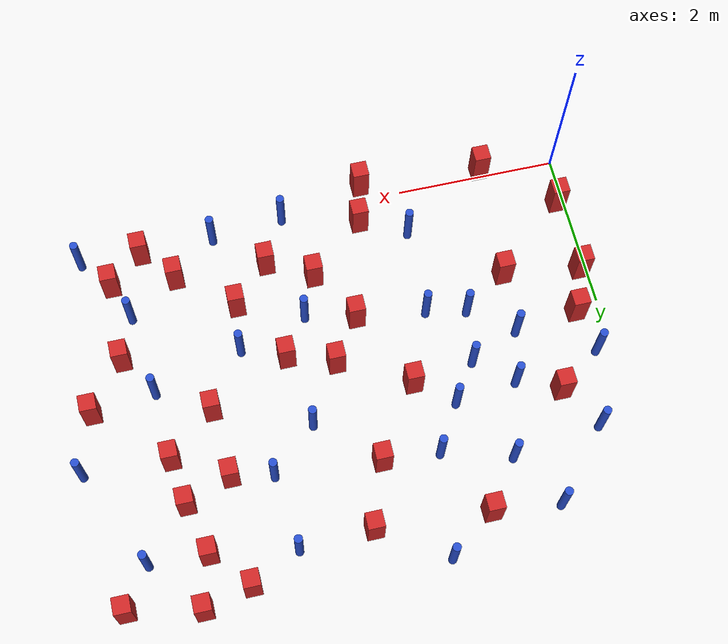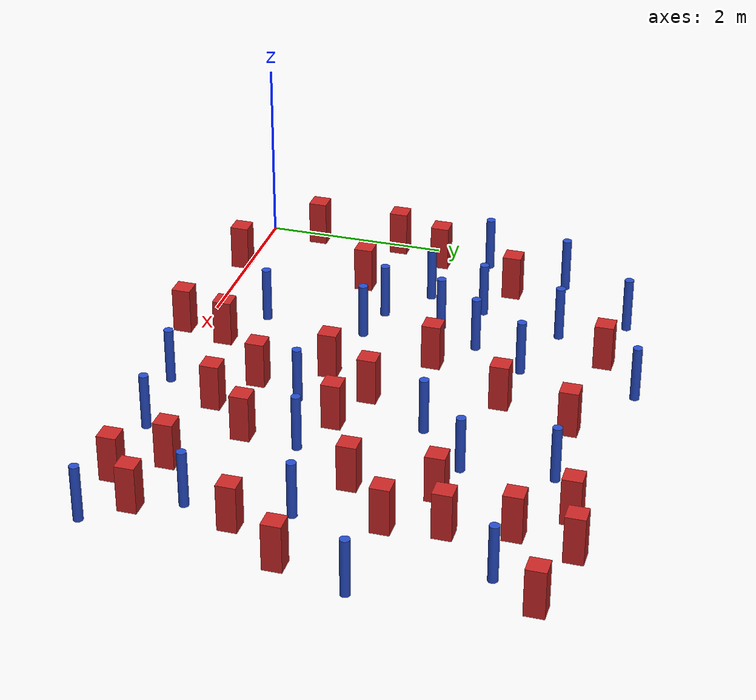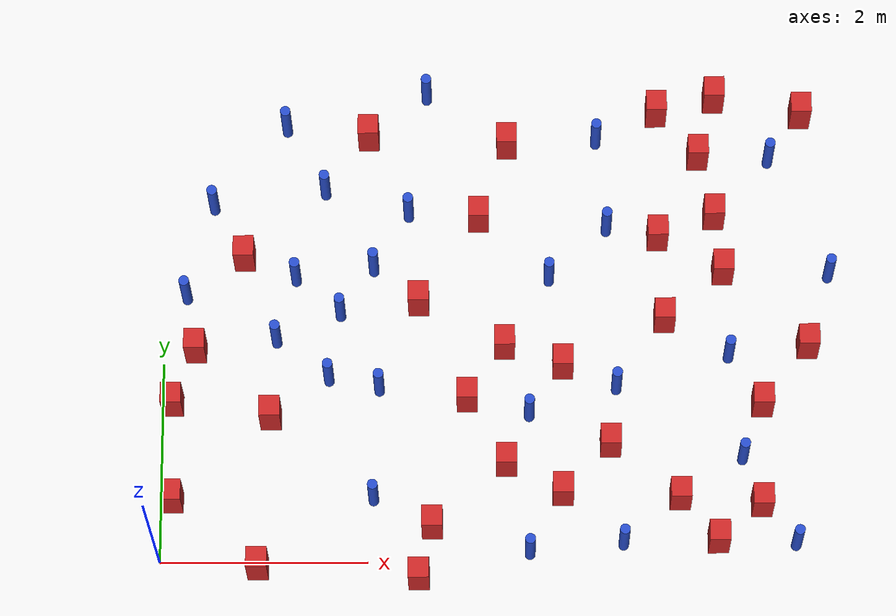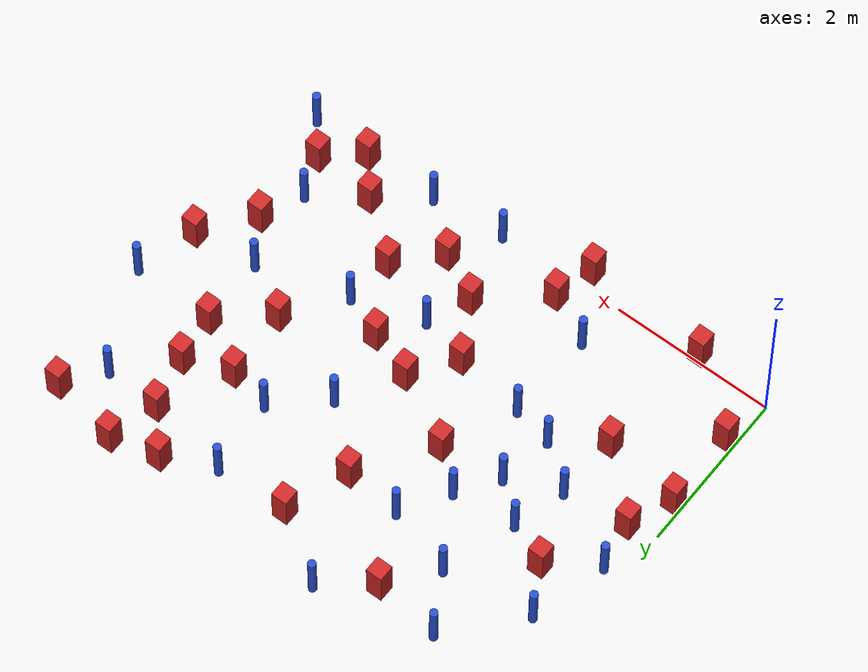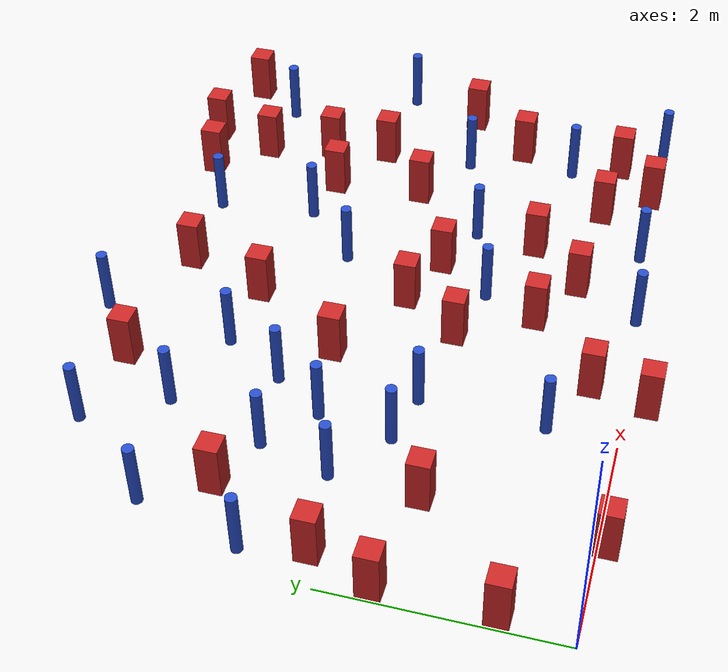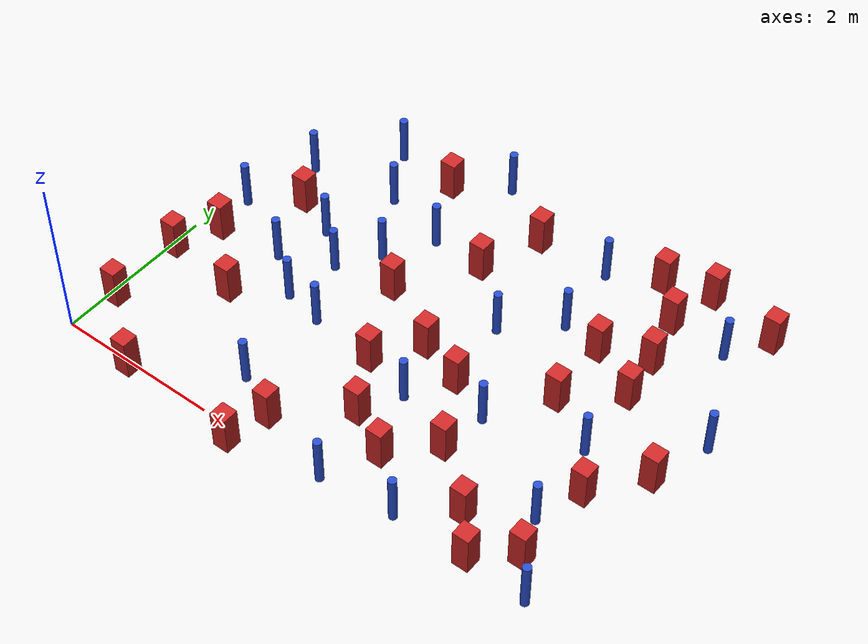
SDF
<sdf version="1.6">
 <model name="dense_22">
  <model name="square_post_obstacle4">
   <static>true</static>
   <pose>6.26932080476 2.13416776253 -6.11067671241e-07 -5.50515727128e-06 -8.79689657224e-07 2.37013304536e-05</pose>
   <link name="link">
    <pose>0 0 0.25 0 -0 0</pose>
    <inertial>
     <mass>100</mass>
     <inertia>
      <ixx>0.166667</ixx>
      <ixy>0</ixy>
      <ixz>0</ixz>
      <iyy>0.166667</iyy>
      <iyz>0</iyz>
      <izz>0.166667</izz>
     </inertia>
    </inertial>
    <collision name="collision"><geometry><box><size>.2 .2 .5</size></box></geometry></collision>
    <visual name="visual">
     <geometry><box><size>.2 .2 .5</size></box></geometry>
     <material>
      <script><name>Gazebo/Red</name><uri>file://media/materials/scripts/gazebo.material</uri></script>
     </material>
    </visual>
   </link>
  </model>
  <model name="square_post_obstacle7">
   <static>true</static>
   <pose>2.61931399791 0.32892126336 -6.11067671241e-07 -5.50515727128e-06 -8.79689657224e-07 2.37013304536e-05</pose>
   <link name="link">
    <pose>0 0 0.25 0 -0 0</pose>
    <inertial>
     <mass>100</mass>
     <inertia>
      <ixx>0.166667</ixx>
      <ixy>0</ixy>
      <ixz>0</ixz>
      <iyy>0.166667</iyy>
      <iyz>0</iyz>
      <izz>0.166667</izz>
     </inertia>
    </inertial>
    <collision name="collision"><geometry><box><size>.2 .2 .5</size></box></geometry></collision>
    <visual name="visual">
     <geometry><box><size>.2 .2 .5</size></box></geometry>
     <material>
      <script><name>Gazebo/Red</name><uri>file://media/materials/scripts/gazebo.material</uri></script>
     </material>
    </visual>
   </link>
  </model>
  <model name="square_post_obstacle8">
   <static>true</static>
   <pose>0.779400273148 3.0589968224 -6.11067671241e-07 -5.50515727128e-06 -8.79689657224e-07 2.37013304536e-05</pose>
   <link name="link">
    <pose>0 0 0.25 0 -0 0</pose>
    <inertial>
     <mass>100</mass>
     <inertia>
      <ixx>0.166667</ixx>
      <ixy>0</ixy>
      <ixz>0</ixz>
      <iyy>0.166667</iyy>
      <iyz>0</iyz>
      <izz>0.166667</izz>
     </inertia>
    </inertial>
    <collision name="collision"><geometry><box><size>.2 .2 .5</size></box></geometry></collision>
    <visual name="visual">
     <geometry><box><size>.2 .2 .5</size></box></geometry>
     <material>
      <script><name>Gazebo/Red</name><uri>file://media/materials/scripts/gazebo.material</uri></script>
     </material>
    </visual>
   </link>
  </model>
  <model name="square_post_obstacle9">
   <static>true</static>
   <pose>0.101790933784 1.56928342861 -6.11067671241e-07 -5.50515727128e-06 -8.79689657224e-07 2.37013304536e-05</pose>
   <link name="link">
    <pose>0 0 0.25 0 -0 0</pose>
    <inertial>
     <mass>100</mass>
     <inertia>
      <ixx>0.166667</ixx>
      <ixy>0</ixy>
      <ixz>0</ixz>
      <iyy>0.166667</iyy>
      <iyz>0</iyz>
      <izz>0.166667</izz>
     </inertia>
    </inertial>
    <collision name="collision"><geometry><box><size>.2 .2 .5</size></box></geometry></collision>
    <visual name="visual">
     <geometry><box><size>.2 .2 .5</size></box></geometry>
     <material>
      <script><name>Gazebo/Red</name><uri>file://media/materials/scripts/gazebo.material</uri></script>
     </material>
    </visual>
   </link>
  </model>
  <model name="square_post_obstacle12">
   <static>true</static>
   <pose>5.79151659013 0.536573536814 -6.11067671241e-07 -5.50515727128e-06 -8.79689657224e-07 2.37013304536e-05</pose>
   <link name="link">
    <pose>0 0 0.25 0 -0 0</pose>
    <inertial>
     <mass>100</mass>
     <inertia>
      <ixx>0.166667</ixx>
      <ixy>0</ixy>
      <ixz>0</ixz>
      <iyy>0.166667</iyy>
      <iyz>0</iyz>
      <izz>0.166667</izz>
     </inertia>
    </inertial>
    <collision name="collision"><geometry><box><size>.2 .2 .5</size></box></geometry></collision>
    <visual name="visual">
     <geometry><box><size>.2 .2 .5</size></box></geometry>
     <material>
      <script><name>Gazebo/Red</name><uri>file://media/materials/scripts/gazebo.material</uri></script>
     </material>
    </visual>
   </link>
  </model>
  <model name="square_post_obstacle15">
   <static>true</static>
   <pose>2.95515435854 1.60631993634 -6.11067671241e-07 -5.50515727128e-06 -8.79689657224e-07 2.37013304536e-05</pose>
   <link name="link">
    <pose>0 0 0.25 0 -0 0</pose>
    <inertial>
     <mass>100</mass>
     <inertia>
      <ixx>0.166667</ixx>
      <ixy>0</ixy>
      <ixz>0</ixz>
      <iyy>0.166667</iyy>
      <iyz>0</iyz>
      <izz>0.166667</izz>
     </inertia>
    </inertial>
    <collision name="collision"><geometry><box><size>.2 .2 .5</size></box></geometry></collision>
    <visual name="visual">
     <geometry><box><size>.2 .2 .5</size></box></geometry>
     <material>
      <script><name>Gazebo/Red</name><uri>file://media/materials/scripts/gazebo.material</uri></script>
     </material>
    </visual>
   </link>
  </model>
  <model name="square_post_obstacle16">
   <static>true</static>
   <pose>1.98771499368 4.31782590708 -6.11067671241e-07 -5.50515727128e-06 -8.79689657224e-07 2.37013304536e-05</pose>
   <link name="link">
    <pose>0 0 0.25 0 -0 0</pose>
    <inertial>
     <mass>100</mass>
     <inertia>
      <ixx>0.166667</ixx>
      <ixy>0</ixy>
      <ixz>0</ixz>
      <iyy>0.166667</iyy>
      <iyz>0</iyz>
      <izz>0.166667</izz>
     </inertia>
    </inertial>
    <collision name="collision"><geometry><box><size>.2 .2 .5</size></box></geometry></collision>
    <visual name="visual">
     <geometry><box><size>.2 .2 .5</size></box></geometry>
     <material>
      <script><name>Gazebo/Red</name><uri>file://media/materials/scripts/gazebo.material</uri></script>
     </material>
    </visual>
   </link>
  </model>
  <model name="pole_obstacle25">
   <static>true</static>
   <pose>0.217772966762 2.66445412357 -9.4761961606e-06 5.49618799729e-07 2.36310413995e-07 -1.55090534826e-07</pose>
   <link name="link">
    <pose>0 0 0.3 0 -0 0</pose>
    <inertial>
     <mass>1</mass>
     <inertia><ixx>0.145833</ixx><ixy>0</ixy><ixz>0</ixz><iyy>0.145833</iyy><iyz>0</iyz><izz>0.125</izz></inertia>
    </inertial>
    <collision name="collision">
     <geometry><cylinder><radius>0.05</radius><length>.6</length></cylinder></geometry>
    </collision>
    <visual name="visual">
     <geometry><cylinder><radius>0.05</radius><length>.6</length></cylinder></geometry>
     <material>
      <script><name>Gazebo/Blue</name><uri>file://media/materials/scripts/gazebo.material</uri></script>
     </material>
    </visual>
   </link>
  </model>
  <model name="square_post_obstacle34">
   <static>true</static>
   <pose>4.82586942838 4.55679232127 -6.11067671241e-07 -5.50515727128e-06 -8.79689657224e-07 2.37013304536e-05</pose>
   <link name="link">
    <pose>0 0 0.25 0 -0 0</pose>
    <inertial>
     <mass>100</mass>
     <inertia>
      <ixx>0.166667</ixx>
      <ixy>0</ixy>
      <ixz>0</ixz>
      <iyy>0.166667</iyy>
      <iyz>0</iyz>
      <izz>0.166667</izz>
     </inertia>
    </inertial>
    <collision name="collision"><geometry><box><size>.2 .2 .5</size></box></geometry></collision>
    <visual name="visual">
     <geometry><box><size>.2 .2 .5</size></box></geometry>
     <material>
      <script><name>Gazebo/Red</name><uri>file://media/materials/scripts/gazebo.material</uri></script>
     </material>
    </visual>
   </link>
  </model>
  <model name="pole_obstacle39">
   <static>true</static>
   <pose>1.72063128281 2.4826615082 -9.47619616065e-06 5.49618799737e-07 2.36310414062e-07 -1.55090534798e-07</pose>
   <link name="link">
    <pose>0 0 0.3 0 -0 0</pose>
    <inertial>
     <mass>1</mass>
     <inertia><ixx>0.145833</ixx><ixy>0</ixy><ixz>0</ixz><iyy>0.145833</iyy><iyz>0</iyz><izz>0.125</izz></inertia>
    </inertial>
    <collision name="collision">
     <geometry><cylinder><radius>0.05</radius><length>.6</length></cylinder></geometry>
    </collision>
    <visual name="visual">
     <geometry><cylinder><radius>0.05</radius><length>.6</length></cylinder></geometry>
     <material>
      <script><name>Gazebo/Blue</name><uri>file://media/materials/scripts/gazebo.material</uri></script>
     </material>
    </visual>
   </link>
  </model>
  <model name="square_post_obstacle44">
   <static>true</static>
   <pose>3.06991139394 3.45622264912 -6.11067671241e-07 -5.50515727128e-06 -8.79689657224e-07 2.37013304536e-05</pose>
   <link name="link">
    <pose>0 0 0.25 0 -0 0</pose>
    <inertial>
     <mass>100</mass>
     <inertia>
      <ixx>0.166667</ixx>
      <ixy>0</ixy>
      <ixz>0</ixz>
      <iyy>0.166667</iyy>
      <iyz>0</iyz>
      <izz>0.166667</izz>
     </inertia>
    </inertial>
    <collision name="collision"><geometry><box><size>.2 .2 .5</size></box></geometry></collision>
    <visual name="visual">
     <geometry><box><size>.2 .2 .5</size></box></geometry>
     <material>
      <script><name>Gazebo/Red</name><uri>file://media/materials/scripts/gazebo.material</uri></script>
     </material>
    </visual>
   </link>
  </model>
  <model name="square_post_obstacle45">
   <static>true</static>
   <pose>3.8844771772 1.93693836416 -6.11067671241e-07 -5.50515727128e-06 -8.79689657224e-07 2.37013304536e-05</pose>
   <link name="link">
    <pose>0 0 0.25 0 -0 0</pose>
    <inertial>
     <mass>100</mass>
     <inertia>
      <ixx>0.166667</ixx>
      <ixy>0</ixy>
      <ixz>0</ixz>
      <iyy>0.166667</iyy>
      <iyz>0</iyz>
      <izz>0.166667</izz>
     </inertia>
    </inertial>
    <collision name="collision"><geometry><box><size>.2 .2 .5</size></box></geometry></collision>
    <visual name="visual">
     <geometry><box><size>.2 .2 .5</size></box></geometry>
     <material>
      <script><name>Gazebo/Red</name><uri>file://media/materials/scripts/gazebo.material</uri></script>
     </material>
    </visual>
   </link>
  </model>
  <model name="pole_obstacle47">
   <static>true</static>
   <pose>5.92821344681 4.06574805997 -9.47619616065e-06 5.49618799737e-07 2.36310414037e-07 -1.55090534814e-07</pose>
   <link name="link">
    <pose>0 0 0.3 0 -0 0</pose>
    <inertial>
     <mass>1</mass>
     <inertia><ixx>0.145833</ixx><ixy>0</ixy><ixz>0</ixz><iyy>0.145833</iyy><iyz>0</iyz><izz>0.125</izz></inertia>
    </inertial>
    <collision name="collision">
     <geometry><cylinder><radius>0.05</radius><length>.6</length></cylinder></geometry>
    </collision>
    <visual name="visual">
     <geometry><cylinder><radius>0.05</radius><length>.6</length></cylinder></geometry>
     <material>
      <script><name>Gazebo/Blue</name><uri>file://media/materials/scripts/gazebo.material</uri></script>
     </material>
    </visual>
   </link>
  </model>
  <model name="pole_obstacle54">
   <static>true</static>
   <pose>1.56436303592 3.74919223554 -9.47619616065e-06 5.49618799737e-07 2.36310414062e-07 -1.55090534798e-07</pose>
   <link name="link">
    <pose>0 0 0.3 0 -0 0</pose>
    <inertial>
     <mass>1</mass>
     <inertia><ixx>0.145833</ixx><ixy>0</ixy><ixz>0</ixz><iyy>0.145833</iyy><iyz>0</iyz><izz>0.125</izz></inertia>
    </inertial>
    <collision name="collision">
     <geometry><cylinder><radius>0.05</radius><length>.6</length></cylinder></geometry>
    </collision>
    <visual name="visual">
     <geometry><cylinder><radius>0.05</radius><length>.6</length></cylinder></geometry>
     <material>
      <script><name>Gazebo/Blue</name><uri>file://media/materials/scripts/gazebo.material</uri></script>
     </material>
    </visual>
   </link>
  </model>
  <model name="pole_obstacle59">
   <static>true</static>
   <pose>1.17912527791 4.41500066654 -9.47619616065e-06 5.49618799737e-07 2.36310414061e-07 -1.550905348e-07</pose>
   <link name="link">
    <pose>0 0 0.3 0 -0 0</pose>
    <inertial>
     <mass>1</mass>
     <inertia><ixx>0.145833</ixx><ixy>0</ixy><ixz>0</ixz><iyy>0.145833</iyy><iyz>0</iyz><izz>0.125</izz></inertia>
    </inertial>
    <collision name="collision">
     <geometry><cylinder><radius>0.05</radius><length>.6</length></cylinder></geometry>
    </collision>
    <visual name="visual">
     <geometry><cylinder><radius>0.05</radius><length>.6</length></cylinder></geometry>
     <material>
      <script><name>Gazebo/Blue</name><uri>file://media/materials/scripts/gazebo.material</uri></script>
     </material>
    </visual>
   </link>
  </model>
  <model name="pole_obstacle73">
   <static>true</static>
   <pose>3.55693027283 0.0680180246044 -9.4761961606e-06 5.49618799729e-07 2.36310414001e-07 -1.55090534824e-07</pose>
   <link name="link">
    <pose>0 0 0.3 0 -0 0</pose>
    <inertial>
     <mass>1</mass>
     <inertia><ixx>0.145833</ixx><ixy>0</ixy><ixz>0</ixz><iyy>0.145833</iyy><iyz>0</iyz><izz>0.125</izz></inertia>
    </inertial>
    <collision name="collision">
     <geometry><cylinder><radius>0.05</radius><length>.6</length></cylinder></geometry>
    </collision>
    <visual name="visual">
     <geometry><cylinder><radius>0.05</radius><length>.6</length></cylinder></geometry>
     <material>
      <script><name>Gazebo/Blue</name><uri>file://media/materials/scripts/gazebo.material</uri></script>
     </material>
    </visual>
   </link>
  </model>
  <model name="pole_obstacle74">
   <static>true</static>
   <pose>4.32387903605 3.35529345492 -9.47619616065e-06 5.49618799738e-07 2.36310414051e-07 -1.55090534805e-07</pose>
   <link name="link">
    <pose>0 0 0.3 0 -0 0</pose>
    <inertial>
     <mass>1</mass>
     <inertia><ixx>0.145833</ixx><ixy>0</ixy><ixz>0</ixz><iyy>0.145833</iyy><iyz>0</iyz><izz>0.125</izz></inertia>
    </inertial>
    <collision name="collision">
     <geometry><cylinder><radius>0.05</radius><length>.6</length></cylinder></geometry>
    </collision>
    <visual name="visual">
     <geometry><cylinder><radius>0.05</radius><length>.6</length></cylinder></geometry>
     <material>
      <script><name>Gazebo/Blue</name><uri>file://media/materials/scripts/gazebo.material</uri></script>
     </material>
    </visual>
   </link>
  </model>
  <model name="pole_obstacle75">
   <static>true</static>
   <pose>6.1163671026 0.14622011786 -9.47619616065e-06 5.49618799737e-07 2.36310414076e-07 -1.55090534793e-07</pose>
   <link name="link">
    <pose>0 0 0.3 0 -0 0</pose>
    <inertial>
     <mass>1</mass>
     <inertia><ixx>0.145833</ixx><ixy>0</ixy><ixz>0</ixz><iyy>0.145833</iyy><iyz>0</iyz><izz>0.125</izz></inertia>
    </inertial>
    <collision name="collision">
     <geometry><cylinder><radius>0.05</radius><length>.6</length></cylinder></geometry>
    </collision>
    <visual name="visual">
     <geometry><cylinder><radius>0.05</radius><length>.6</length></cylinder></geometry>
     <material>
      <script><name>Gazebo/Blue</name><uri>file://media/materials/scripts/gazebo.material</uri></script>
     </material>
    </visual>
   </link>
  </model>
  <model name="pole_obstacle79">
   <static>true</static>
   <pose>2.38351783101 3.51050894018 -9.47619616065e-06 5.49618799737e-07 2.36310414051e-07 -1.55090534807e-07</pose>
   <link name="link">
    <pose>0 0 0.3 0 -0 0</pose>
    <inertial>
     <mass>1</mass>
     <inertia><ixx>0.145833</ixx><ixy>0</ixy><ixz>0</ixz><iyy>0.145833</iyy><iyz>0</iyz><izz>0.125</izz></inertia>
    </inertial>
    <collision name="collision">
     <geometry><cylinder><radius>0.05</radius><length>.6</length></cylinder></geometry>
    </collision>
    <visual name="visual">
     <geometry><cylinder><radius>0.05</radius><length>.6</length></cylinder></geometry>
     <material>
      <script><name>Gazebo/Blue</name><uri>file://media/materials/scripts/gazebo.material</uri></script>
     </material>
    </visual>
   </link>
  </model>
  <model name="pole_obstacle87">
   <static>true</static>
   <pose>2.04370083396 2.94674760831 -9.47619616065e-06 5.49618799738e-07 2.36310414047e-07 -1.55090534808e-07</pose>
   <link name="link">
    <pose>0 0 0.3 0 -0 0</pose>
    <inertial>
     <mass>1</mass>
     <inertia><ixx>0.145833</ixx><ixy>0</ixy><ixz>0</ixz><iyy>0.145833</iyy><iyz>0</iyz><izz>0.125</izz></inertia>
    </inertial>
    <collision name="collision">
     <geometry><cylinder><radius>0.05</radius><length>.6</length></cylinder></geometry>
    </collision>
    <visual name="visual">
     <geometry><cylinder><radius>0.05</radius><length>.6</length></cylinder></geometry>
     <material>
      <script><name>Gazebo/Blue</name><uri>file://media/materials/scripts/gazebo.material</uri></script>
     </material>
    </visual>
   </link>
  </model>
  <model name="pole_obstacle88">
   <static>true</static>
   <pose>2.55857978694 4.74817105469 -9.47619616065e-06 5.49618799738e-07 2.3631041406e-07 -1.55090534801e-07</pose>
   <link name="link">
    <pose>0 0 0.3 0 -0 0</pose>
    <inertial>
     <mass>1</mass>
     <inertia><ixx>0.145833</ixx><ixy>0</ixy><ixz>0</ixz><iyy>0.145833</iyy><iyz>0</iyz><izz>0.125</izz></inertia>
    </inertial>
    <collision name="collision">
     <geometry><cylinder><radius>0.05</radius><length>.6</length></cylinder></geometry>
    </collision>
    <visual name="visual">
     <geometry><cylinder><radius>0.05</radius><length>.6</length></cylinder></geometry>
     <material>
      <script><name>Gazebo/Blue</name><uri>file://media/materials/scripts/gazebo.material</uri></script>
     </material>
    </visual>
   </link>
  </model>
  <model name="pole_obstacle93">
   <static>true</static>
   <pose>1.10042655831 2.21123283406 -9.47619616065e-06 5.49618799737e-07 2.36310414062e-07 -1.55090534798e-07</pose>
   <link name="link">
    <pose>0 0 0.3 0 -0 0</pose>
    <inertial>
     <mass>1</mass>
     <inertia><ixx>0.145833</ixx><ixy>0</ixy><ixz>0</ixz><iyy>0.145833</iyy><iyz>0</iyz><izz>0.125</izz></inertia>
    </inertial>
    <collision name="collision">
     <geometry><cylinder><radius>0.05</radius><length>.6</length></cylinder></geometry>
    </collision>
    <visual name="visual">
     <geometry><cylinder><radius>0.05</radius><length>.6</length></cylinder></geometry>
     <material>
      <script><name>Gazebo/Blue</name><uri>file://media/materials/scripts/gazebo.material</uri></script>
     </material>
    </visual>
   </link>
  </model>
  <model name="square_post_obstacle85">
   <static>true</static>
   <pose>3.34941830353 4.22500570156 -6.11067671241e-07 -5.50515727128e-06 -8.79689657224e-07 2.37013304536e-05</pose>
   <link name="link">
    <pose>0 0 0.25 0 -0 0</pose>
    <inertial>
     <mass>100</mass>
     <inertia>
      <ixx>0.166667</ixx>
      <ixy>0</ixy>
      <ixz>0</ixz>
      <iyy>0.166667</iyy>
      <iyz>0</iyz>
      <izz>0.166667</izz>
     </inertia>
    </inertial>
    <collision name="collision"><geometry><box><size>.2 .2 .5</size></box></geometry></collision>
    <visual name="visual">
     <geometry><box><size>.2 .2 .5</size></box></geometry>
     <material>
      <script><name>Gazebo/Red</name><uri>file://media/materials/scripts/gazebo.material</uri></script>
     </material>
    </visual>
   </link>
  </model>
  <model name="square_post_obstacle87">
   <static>true</static>
   <pose>4.87806929842 2.40512811719 -6.11067671241e-07 -5.50515727128e-06 -8.79689657224e-07 2.37013304536e-05</pose>
   <link name="link">
    <pose>0 0 0.25 0 -0 0</pose>
    <inertial>
     <mass>100</mass>
     <inertia>
      <ixx>0.166667</ixx>
      <ixy>0</ixy>
      <ixz>0</ixz>
      <iyy>0.166667</iyy>
      <iyz>0</iyz>
      <izz>0.166667</izz>
     </inertia>
    </inertial>
    <collision name="collision"><geometry><box><size>.2 .2 .5</size></box></geometry></collision>
    <visual name="visual">
     <geometry><box><size>.2 .2 .5</size></box></geometry>
     <material>
      <script><name>Gazebo/Red</name><uri>file://media/materials/scripts/gazebo.material</uri></script>
     </material>
    </visual>
   </link>
  </model>
  <model name="pole_obstacle100">
   <static>true</static>
   <pose>2.10262819543 1.71703148074 -9.47619616065e-06 5.49618799737e-07 2.36310414072e-07 -1.55090534793e-07</pose>
   <link name="link">
    <pose>0 0 0.3 0 -0 0</pose>
    <inertial>
     <mass>1</mass>
     <inertia><ixx>0.145833</ixx><ixy>0</ixy><ixz>0</ixz><iyy>0.145833</iyy><iyz>0</iyz><izz>0.125</izz></inertia>
    </inertial>
    <collision name="collision">
     <geometry><cylinder><radius>0.05</radius><length>.6</length></cylinder></geometry>
    </collision>
    <visual name="visual">
     <geometry><cylinder><radius>0.05</radius><length>.6</length></cylinder></geometry>
     <material>
      <script><name>Gazebo/Blue</name><uri>file://media/materials/scripts/gazebo.material</uri></script>
     </material>
    </visual>
   </link>
  </model>
  <model name="square_post_obstacle89">
   <static>true</static>
   <pose>4.34028850799 1.13881821213 -6.11067671241e-07 -5.50515727128e-06 -8.79689657224e-07 2.37013304536e-05</pose>
   <link name="link">
    <pose>0 0 0.25 0 -0 0</pose>
    <inertial>
     <mass>100</mass>
     <inertia>
      <ixx>0.166667</ixx>
      <ixy>0</ixy>
      <ixz>0</ixz>
      <iyy>0.166667</iyy>
      <iyz>0</iyz>
      <izz>0.166667</izz>
     </inertia>
    </inertial>
    <collision name="collision"><geometry><box><size>.2 .2 .5</size></box></geometry></collision>
    <visual name="visual">
     <geometry><box><size>.2 .2 .5</size></box></geometry>
     <material>
      <script><name>Gazebo/Red</name><uri>file://media/materials/scripts/gazebo.material</uri></script>
     </material>
    </visual>
   </link>
  </model>
  <model name="square_post_obstacle94">
   <static>true</static>
   <pose>6.24975194067 4.5316399352 -6.11067671241e-07 -5.50515727128e-06 -8.79689657224e-07 2.37013304536e-05</pose>
   <link name="link">
    <pose>0 0 0.25 0 -0 0</pose>
    <inertial>
     <mass>100</mass>
     <inertia>
      <ixx>0.166667</ixx>
      <ixy>0</ixy>
      <ixz>0</ixz>
      <iyy>0.166667</iyy>
      <iyz>0</iyz>
      <izz>0.166667</izz>
     </inertia>
    </inertial>
    <collision name="collision"><geometry><box><size>.2 .2 .5</size></box></geometry></collision>
    <visual name="visual">
     <geometry><box><size>.2 .2 .5</size></box></geometry>
     <material>
      <script><name>Gazebo/Red</name><uri>file://media/materials/scripts/gazebo.material</uri></script>
     </material>
    </visual>
   </link>
  </model>
  <model name="square_post_obstacle99">
   <static>true</static>
   <pose>5.00620187158 0.605437472301 -6.11067671241e-07 -5.50515727128e-06 -8.79689657224e-07 2.37013304536e-05</pose>
   <link name="link">
    <pose>0 0 0.25 0 -0 0</pose>
    <inertial>
     <mass>100</mass>
     <inertia>
      <ixx>0.166667</ixx>
      <ixy>0</ixy>
      <ixz>0</ixz>
      <iyy>0.166667</iyy>
      <iyz>0</iyz>
      <izz>0.166667</izz>
     </inertia>
    </inertial>
    <collision name="collision"><geometry><box><size>.2 .2 .5</size></box></geometry></collision>
    <visual name="visual">
     <geometry><box><size>.2 .2 .5</size></box></geometry>
     <material>
      <script><name>Gazebo/Red</name><uri>file://media/materials/scripts/gazebo.material</uri></script>
     </material>
    </visual>
   </link>
  </model>
  <model name="square_post_obstacle111">
   <static>true</static>
   <pose>3.87818542322 0.65652235091 -6.11067671241e-07 -5.50515727128e-06 -8.79689657224e-07 2.37013304536e-05</pose>
   <link name="link">
    <pose>0 0 0.25 0 -0 0</pose>
    <inertial>
     <mass>100</mass>
     <inertia>
      <ixx>0.166667</ixx>
      <ixy>0</ixy>
      <ixz>0</ixz>
      <iyy>0.166667</iyy>
      <iyz>0</iyz>
      <izz>0.166667</izz>
     </inertia>
    </inertial>
    <collision name="collision"><geometry><box><size>.2 .2 .5</size></box></geometry></collision>
    <visual name="visual">
     <geometry><box><size>.2 .2 .5</size></box></geometry>
     <material>
      <script><name>Gazebo/Red</name><uri>file://media/materials/scripts/gazebo.material</uri></script>
     </material>
    </visual>
   </link>
  </model>
  <model name="pole_obstacle125">
   <static>true</static>
   <pose>6.49274439916 2.86366403578 -9.47619616065e-06 5.49618799738e-07 2.36310414051e-07 -1.55090534805e-07</pose>
   <link name="link">
    <pose>0 0 0.3 0 -0 0</pose>
    <inertial>
     <mass>1</mass>
     <inertia><ixx>0.145833</ixx><ixy>0</ixy><ixz>0</ixz><iyy>0.145833</iyy><iyz>0</iyz><izz>0.125</izz></inertia>
    </inertial>
    <collision name="collision">
     <geometry><cylinder><radius>0.05</radius><length>.6</length></cylinder></geometry>
    </collision>
    <visual name="visual">
     <geometry><cylinder><radius>0.05</radius><length>.6</length></cylinder></geometry>
     <material>
      <script><name>Gazebo/Blue</name><uri>file://media/materials/scripts/gazebo.material</uri></script>
     </material>
    </visual>
   </link>
  </model>
  <model name="square_post_obstacle121">
   <static>true</static>
   <pose>2.48373517905 2.59141162242 -6.11067671241e-07 -5.50515727128e-06 -8.79689657224e-07 2.37013304536e-05</pose>
   <link name="link">
    <pose>0 0 0.25 0 -0 0</pose>
    <inertial>
     <mass>100</mass>
     <inertia>
      <ixx>0.166667</ixx>
      <ixy>0</ixy>
      <ixz>0</ixz>
      <iyy>0.166667</iyy>
      <iyz>0</iyz>
      <izz>0.166667</izz>
     </inertia>
    </inertial>
    <collision name="collision"><geometry><box><size>.2 .2 .5</size></box></geometry></collision>
    <visual name="visual">
     <geometry><box><size>.2 .2 .5</size></box></geometry>
     <material>
      <script><name>Gazebo/Red</name><uri>file://media/materials/scripts/gazebo.material</uri></script>
     </material>
    </visual>
   </link>
  </model>
  <model name="pole_obstacle141">
   <static>true</static>
   <pose>1.28329032788 2.84770055174 -9.47619616065e-06 5.49618799737e-07 2.36310414062e-07 -1.55090534798e-07</pose>
   <link name="link">
    <pose>0 0 0.3 0 -0 0</pose>
    <inertial>
     <mass>1</mass>
     <inertia><ixx>0.145833</ixx><ixy>0</ixy><ixz>0</ixz><iyy>0.145833</iyy><iyz>0</iyz><izz>0.125</izz></inertia>
    </inertial>
    <collision name="collision">
     <geometry><cylinder><radius>0.05</radius><length>.6</length></cylinder></geometry>
    </collision>
    <visual name="visual">
     <geometry><cylinder><radius>0.05</radius><length>.6</length></cylinder></geometry>
     <material>
      <script><name>Gazebo/Blue</name><uri>file://media/materials/scripts/gazebo.material</uri></script>
     </material>
    </visual>
   </link>
  </model>
  <model name="square_post_obstacle136">
   <static>true</static>
   <pose>2.49179553282 -0.178526262418 -6.11067671241e-07 -5.50515727128e-06 -8.79689657224e-07 2.37013304536e-05</pose>
   <link name="link">
    <pose>0 0 0.25 0 -0 0</pose>
    <inertial>
     <mass>100</mass>
     <inertia>
      <ixx>0.166667</ixx>
      <ixy>0</ixy>
      <ixz>0</ixz>
      <iyy>0.166667</iyy>
      <iyz>0</iyz>
      <izz>0.166667</izz>
     </inertia>
    </inertial>
    <collision name="collision"><geometry><box><size>.2 .2 .5</size></box></geometry></collision>
    <visual name="visual">
     <geometry><box><size>.2 .2 .5</size></box></geometry>
     <material>
      <script><name>Gazebo/Red</name><uri>file://media/materials/scripts/gazebo.material</uri></script>
     </material>
    </visual>
   </link>
  </model>
  <model name="square_post_obstacle140">
   <static>true</static>
   <pose>5.23060293527 4.0967780694 -6.11067671241e-07 -5.50515727128e-06 -8.79689657224e-07 2.37013304536e-05</pose>
   <link name="link">
    <pose>0 0 0.25 0 -0 0</pose>
    <inertial>
     <mass>100</mass>
     <inertia>
      <ixx>0.166667</ixx>
      <ixy>0</ixy>
      <ixz>0</ixz>
      <iyy>0.166667</iyy>
      <iyz>0</iyz>
      <izz>0.166667</izz>
     </inertia>
    </inertial>
    <collision name="collision"><geometry><box><size>.2 .2 .5</size></box></geometry></collision>
    <visual name="visual">
     <geometry><box><size>.2 .2 .5</size></box></geometry>
     <material>
      <script><name>Gazebo/Red</name><uri>file://media/materials/scripts/gazebo.material</uri></script>
     </material>
    </visual>
   </link>
  </model>
  <model name="pole_obstacle151">
   <static>true</static>
   <pose>5.50062088972 2.04033107825 -9.47619616065e-06 5.49618799737e-07 2.36310414065e-07 -1.55090534797e-07</pose>
   <link name="link">
    <pose>0 0 0.3 0 -0 0</pose>
    <inertial>
     <mass>1</mass>
     <inertia><ixx>0.145833</ixx><ixy>0</ixy><ixz>0</ixz><iyy>0.145833</iyy><iyz>0</iyz><izz>0.125</izz></inertia>
    </inertial>
    <collision name="collision">
     <geometry><cylinder><radius>0.05</radius><length>.6</length></cylinder></geometry>
    </collision>
    <visual name="visual">
     <geometry><cylinder><radius>0.05</radius><length>.6</length></cylinder></geometry>
     <material>
      <script><name>Gazebo/Blue</name><uri>file://media/materials/scripts/gazebo.material</uri></script>
     </material>
    </visual>
   </link>
  </model>
  <model name="square_post_obstacle141">
   <static>true</static>
   <pose>5.37863066601 3.47014729627 -6.11067671241e-07 -5.50515727128e-06 -8.79689657224e-07 2.37013304536e-05</pose>
   <link name="link">
    <pose>0 0 0.25 0 -0 0</pose>
    <inertial>
     <mass>100</mass>
     <inertia>
      <ixx>0.166667</ixx>
      <ixy>0</ixy>
      <ixz>0</ixz>
      <iyy>0.166667</iyy>
      <iyz>0</iyz>
      <izz>0.166667</izz>
     </inertia>
    </inertial>
    <collision name="collision"><geometry><box><size>.2 .2 .5</size></box></geometry></collision>
    <visual name="visual">
     <geometry><box><size>.2 .2 .5</size></box></geometry>
     <material>
      <script><name>Gazebo/Red</name><uri>file://media/materials/scripts/gazebo.material</uri></script>
     </material>
    </visual>
   </link>
  </model>
  <model name="pole_obstacle152">
   <static>true</static>
   <pose>4.40420200495 1.72216105453 -9.47619616065e-06 5.49618799738e-07 2.36310414071e-07 -1.55090534796e-07</pose>
   <link name="link">
    <pose>0 0 0.3 0 -0 0</pose>
    <inertial>
     <mass>1</mass>
     <inertia><ixx>0.145833</ixx><ixy>0</ixy><ixz>0</ixz><iyy>0.145833</iyy><iyz>0</iyz><izz>0.125</izz></inertia>
    </inertial>
    <collision name="collision">
     <geometry><cylinder><radius>0.05</radius><length>.6</length></cylinder></geometry>
    </collision>
    <visual name="visual">
     <geometry><cylinder><radius>0.05</radius><length>.6</length></cylinder></geometry>
     <material>
      <script><name>Gazebo/Blue</name><uri>file://media/materials/scripts/gazebo.material</uri></script>
     </material>
    </visual>
   </link>
  </model>
  <model name="square_post_obstacle145">
   <static>true</static>
   <pose>1.05274488462 1.43003434858 -6.11067671241e-07 -5.50515727128e-06 -8.79689657224e-07 2.37013304536e-05</pose>
   <link name="link">
    <pose>0 0 0.25 0 -0 0</pose>
    <inertial>
     <mass>100</mass>
     <inertia>
      <ixx>0.166667</ixx>
      <ixy>0</ixy>
      <ixz>0</ixz>
      <iyy>0.166667</iyy>
      <iyz>0</iyz>
      <izz>0.166667</izz>
     </inertia>
    </inertial>
    <collision name="collision"><geometry><box><size>.2 .2 .5</size></box></geometry></collision>
    <visual name="visual">
     <geometry><box><size>.2 .2 .5</size></box></geometry>
     <material>
      <script><name>Gazebo/Red</name><uri>file://media/materials/scripts/gazebo.material</uri></script>
     </material>
    </visual>
   </link>
  </model>
  <model name="pole_obstacle160">
   <static>true</static>
   <pose>3.75642836605 2.83887883782 -9.47619616065e-06 5.49618799737e-07 2.36310414051e-07 -1.55090534807e-07</pose>
   <link name="link">
    <pose>0 0 0.3 0 -0 0</pose>
    <inertial>
     <mass>1</mass>
     <inertia><ixx>0.145833</ixx><ixy>0</ixy><ixz>0</ixz><iyy>0.145833</iyy><iyz>0</iyz><izz>0.125</izz></inertia>
    </inertial>
    <collision name="collision">
     <geometry><cylinder><radius>0.05</radius><length>.6</length></cylinder></geometry>
    </collision>
    <visual name="visual">
     <geometry><cylinder><radius>0.05</radius><length>.6</length></cylinder></geometry>
     <material>
      <script><name>Gazebo/Blue</name><uri>file://media/materials/scripts/gazebo.material</uri></script>
     </material>
    </visual>
   </link>
  </model>
  <model name="square_post_obstacle156">
   <static>true</static>
   <pose>0.116676757465 0.599662808526 -6.11067671241e-07 -5.50515727128e-06 -8.79689657224e-07 2.37013304536e-05</pose>
   <link name="link">
    <pose>0 0 0.25 0 -0 0</pose>
    <inertial>
     <mass>100</mass>
     <inertia>
      <ixx>0.166667</ixx>
      <ixy>0</ixy>
      <ixz>0</ixz>
      <iyy>0.166667</iyy>
      <iyz>0</iyz>
      <izz>0.166667</izz>
     </inertia>
    </inertial>
    <collision name="collision"><geometry><box><size>.2 .2 .5</size></box></geometry></collision>
    <visual name="visual">
     <geometry><box><size>.2 .2 .5</size></box></geometry>
     <material>
      <script><name>Gazebo/Red</name><uri>file://media/materials/scripts/gazebo.material</uri></script>
     </material>
    </visual>
   </link>
  </model>
  <model name="square_post_obstacle158">
   <static>true</static>
   <pose>5.81648789738 1.54175247365 -6.11067671241e-07 -5.50515727128e-06 -8.79689657224e-07 2.37013304536e-05</pose>
   <link name="link">
    <pose>0 0 0.25 0 -0 0</pose>
    <inertial>
     <mass>100</mass>
     <inertia>
      <ixx>0.166667</ixx>
      <ixy>0</ixy>
      <ixz>0</ixz>
      <iyy>0.166667</iyy>
      <iyz>0</iyz>
      <izz>0.166667</izz>
     </inertia>
    </inertial>
    <collision name="collision"><geometry><box><size>.2 .2 .5</size></box></geometry></collision>
    <visual name="visual">
     <geometry><box><size>.2 .2 .5</size></box></geometry>
     <material>
      <script><name>Gazebo/Red</name><uri>file://media/materials/scripts/gazebo.material</uri></script>
     </material>
    </visual>
   </link>
  </model>
  <model name="pole_obstacle171">
   <static>true</static>
   <pose>0.471636547954 3.59474494561 -9.47619616065e-06 5.49618799738e-07 2.36310414066e-07 -1.55090534797e-07</pose>
   <link name="link">
    <pose>0 0 0.3 0 -0 0</pose>
    <inertial>
     <mass>1</mass>
     <inertia><ixx>0.145833</ixx><ixy>0</ixy><ixz>0</ixz><iyy>0.145833</iyy><iyz>0</iyz><izz>0.125</izz></inertia>
    </inertial>
    <collision name="collision">
     <geometry><cylinder><radius>0.05</radius><length>.6</length></cylinder></geometry>
    </collision>
    <visual name="visual">
     <geometry><cylinder><radius>0.05</radius><length>.6</length></cylinder></geometry>
     <material>
      <script><name>Gazebo/Blue</name><uri>file://media/materials/scripts/gazebo.material</uri></script>
     </material>
    </visual>
   </link>
  </model>
  <model name="square_post_obstacle168">
   <static>true</static>
   <pose>5.36661739201 0.176539237651 -6.11067671241e-07 -5.50515727128e-06 -8.79689657224e-07 2.37013304536e-05</pose>
   <link name="link">
    <pose>0 0 0.25 0 -0 0</pose>
    <inertial>
     <mass>100</mass>
     <inertia>
      <ixx>0.166667</ixx>
      <ixy>0</ixy>
      <ixz>0</ixz>
      <iyy>0.166667</iyy>
      <iyz>0</iyz>
      <izz>0.166667</izz>
     </inertia>
    </inertial>
    <collision name="collision"><geometry><box><size>.2 .2 .5</size></box></geometry></collision>
    <visual name="visual">
     <geometry><box><size>.2 .2 .5</size></box></geometry>
     <material>
      <script><name>Gazebo/Red</name><uri>file://media/materials/scripts/gazebo.material</uri></script>
     </material>
    </visual>
   </link>
  </model>
  <model name="pole_obstacle178">
   <static>true</static>
   <pose>5.61808737924 1.00693794453 -9.47619616065e-06 5.49618799737e-07 2.36310414071e-07 -1.55090534795e-07</pose>
   <link name="link">
    <pose>0 0 0.3 0 -0 0</pose>
    <inertial>
     <mass>1</mass>
     <inertia><ixx>0.145833</ixx><ixy>0</ixy><ixz>0</ixz><iyy>0.145833</iyy><iyz>0</iyz><izz>0.125</izz></inertia>
    </inertial>
    <collision name="collision">
     <geometry><cylinder><radius>0.05</radius><length>.6</length></cylinder></geometry>
    </collision>
    <visual name="visual">
     <geometry><cylinder><radius>0.05</radius><length>.6</length></cylinder></geometry>
     <material>
      <script><name>Gazebo/Blue</name><uri>file://media/materials/scripts/gazebo.material</uri></script>
     </material>
    </visual>
   </link>
  </model>
  <model name="pole_obstacle181">
   <static>true</static>
   <pose>4.45719744567 0.157987099637 -9.47619616065e-06 5.49618799737e-07 2.36310414076e-07 -1.55090534793e-07</pose>
   <link name="link">
    <pose>0 0 0.3 0 -0 0</pose>
    <inertial>
     <mass>1</mass>
     <inertia><ixx>0.145833</ixx><ixy>0</ixy><ixz>0</ixz><iyy>0.145833</iyy><iyz>0</iyz><izz>0.125</izz></inertia>
    </inertial>
    <collision name="collision">
     <geometry><cylinder><radius>0.05</radius><length>.6</length></cylinder></geometry>
    </collision>
    <visual name="visual">
     <geometry><cylinder><radius>0.05</radius><length>.6</length></cylinder></geometry>
     <material>
      <script><name>Gazebo/Blue</name><uri>file://media/materials/scripts/gazebo.material</uri></script>
     </material>
    </visual>
   </link>
  </model>
  <model name="pole_obstacle184">
   <static>true</static>
   <pose>2.05272230612 0.609321913698 -9.47619616065e-06 5.49618799738e-07 2.36310414075e-07 -1.55090534793e-07</pose>
   <link name="link">
    <pose>0 0 0.3 0 -0 0</pose>
    <inertial>
     <mass>1</mass>
     <inertia><ixx>0.145833</ixx><ixy>0</ixy><ixz>0</ixz><iyy>0.145833</iyy><iyz>0</iyz><izz>0.125</izz></inertia>
    </inertial>
    <collision name="collision">
     <geometry><cylinder><radius>0.05</radius><length>.6</length></cylinder></geometry>
    </collision>
    <visual name="visual">
     <geometry><cylinder><radius>0.05</radius><length>.6</length></cylinder></geometry>
     <material>
      <script><name>Gazebo/Blue</name><uri>file://media/materials/scripts/gazebo.material</uri></script>
     </material>
    </visual>
   </link>
  </model>
  <model name="square_post_obstacle174">
   <static>true</static>
   <pose>3.33566620942 0.949977449949 -6.11067671241e-07 -5.50515727128e-06 -8.79689657224e-07 2.37013304536e-05</pose>
   <link name="link">
    <pose>0 0 0.25 0 -0 0</pose>
    <inertial>
     <mass>100</mass>
     <inertia>
      <ixx>0.166667</ixx>
      <ixy>0</ixy>
      <ixz>0</ixz>
      <iyy>0.166667</iyy>
      <iyz>0</iyz>
      <izz>0.166667</izz>
     </inertia>
    </inertial>
    <collision name="collision"><geometry><box><size>.2 .2 .5</size></box></geometry></collision>
    <visual name="visual">
     <geometry><box><size>.2 .2 .5</size></box></geometry>
     <material>
      <script><name>Gazebo/Red</name><uri>file://media/materials/scripts/gazebo.material</uri></script>
     </material>
    </visual>
   </link>
  </model>
  <model name="square_post_obstacle191">
   <static>true</static>
   <pose>5.45629660788 2.90049520107 -6.11067671241e-07 -5.50515727128e-06 -8.79689657224e-07 2.37013304536e-05</pose>
   <link name="link">
    <pose>0 0 0.25 0 -0 0</pose>
    <inertial>
     <mass>100</mass>
     <inertia>
      <ixx>0.166667</ixx>
      <ixy>0</ixy>
      <ixz>0</ixz>
      <iyy>0.166667</iyy>
      <iyz>0</iyz>
      <izz>0.166667</izz>
     </inertia>
    </inertial>
    <collision name="collision"><geometry><box><size>.2 .2 .5</size></box></geometry></collision>
    <visual name="visual">
     <geometry><box><size>.2 .2 .5</size></box></geometry>
     <material>
      <script><name>Gazebo/Red</name><uri>file://media/materials/scripts/gazebo.material</uri></script>
     </material>
    </visual>
   </link>
  </model>
  <model name="square_post_obstacle200">
   <static>true</static>
   <pose>4.82300707273 3.25462635138 -6.11067671241e-07 -5.50515727128e-06 -8.79689657224e-07 2.37013304536e-05</pose>
   <link name="link">
    <pose>0 0 0.25 0 -0 0</pose>
    <inertial>
     <mass>100</mass>
     <inertia>
      <ixx>0.166667</ixx>
      <ixy>0</ixy>
      <ixz>0</ixz>
      <iyy>0.166667</iyy>
      <iyz>0</iyz>
      <izz>0.166667</izz>
     </inertia>
    </inertial>
    <collision name="collision"><geometry><box><size>.2 .2 .5</size></box></geometry></collision>
    <visual name="visual">
     <geometry><box><size>.2 .2 .5</size></box></geometry>
     <material>
      <script><name>Gazebo/Red</name><uri>file://media/materials/scripts/gazebo.material</uri></script>
     </material>
    </visual>
   </link>
  </model>
  <model name="pole_obstacle194">
   <static>true</static>
   <pose>4.22939137211 4.27274167119 -9.47619616065e-06 5.49618799737e-07 2.36310414037e-07 -1.55090534814e-07</pose>
   <link name="link">
    <pose>0 0 0.3 0 -0 0</pose>
    <inertial>
     <mass>1</mass>
     <inertia><ixx>0.145833</ixx><ixy>0</ixy><ixz>0</ixz><iyy>0.145833</iyy><iyz>0</iyz><izz>0.125</izz></inertia>
    </inertial>
    <collision name="collision">
     <geometry><cylinder><radius>0.05</radius><length>.6</length></cylinder></geometry>
    </collision>
    <visual name="visual">
     <geometry><cylinder><radius>0.05</radius><length>.6</length></cylinder></geometry>
     <material>
      <script><name>Gazebo/Blue</name><uri>file://media/materials/scripts/gazebo.material</uri></script>
     </material>
    </visual>
   </link>
  </model>
  <model name="pole_obstacle195">
   <static>true</static>
   <pose>1.61268568972 1.81985441162 -9.47619616065e-06 5.49618799737e-07 2.36310414065e-07 -1.55090534798e-07</pose>
   <link name="link">
    <pose>0 0 0.3 0 -0 0</pose>
    <inertial>
     <mass>1</mass>
     <inertia><ixx>0.145833</ixx><ixy>0</ixy><ixz>0</ixz><iyy>0.145833</iyy><iyz>0</iyz><izz>0.125</izz></inertia>
    </inertial>
    <collision name="collision">
     <geometry><cylinder><radius>0.05</radius><length>.6</length></cylinder></geometry>
    </collision>
    <visual name="visual">
     <geometry><cylinder><radius>0.05</radius><length>.6</length></cylinder></geometry>
     <material>
      <script><name>Gazebo/Blue</name><uri>file://media/materials/scripts/gazebo.material</uri></script>
     </material>
    </visual>
   </link>
  </model>
  <model name="pole_obstacle213">
   <static>true</static>
   <pose>3.55706964697 1.45309020956 -9.47619616065e-06 5.49618799737e-07 2.36310414072e-07 -1.55090534793e-07</pose>
   <link name="link">
    <pose>0 0 0.3 0 -0 0</pose>
    <inertial>
     <mass>1</mass>
     <inertia><ixx>0.145833</ixx><ixy>0</ixy><ixz>0</ixz><iyy>0.145833</iyy><iyz>0</iyz><izz>0.125</izz></inertia>
    </inertial>
    <collision name="collision">
     <geometry><cylinder><radius>0.05</radius><length>.6</length></cylinder></geometry>
    </collision>
    <visual name="visual">
     <geometry><cylinder><radius>0.05</radius><length>.6</length></cylinder></geometry>
     <material>
      <script><name>Gazebo/Blue</name><uri>file://media/materials/scripts/gazebo.material</uri></script>
     </material>
    </visual>
   </link>
  </model>
  <model name="square_post_obstacle210">
   <static>true</static>
   <pose>3.3205999502 2.13862997688 -6.11067671241e-07 -5.50515727128e-06 -8.79689657224e-07 2.37013304536e-05</pose>
   <link name="link">
    <pose>0 0 0.25 0 -0 0</pose>
    <inertial>
     <mass>100</mass>
     <inertia>
      <ixx>0.166667</ixx>
      <ixy>0</ixy>
      <ixz>0</ixz>
      <iyy>0.166667</iyy>
      <iyz>0</iyz>
      <izz>0.166667</izz>
     </inertia>
    </inertial>
    <collision name="collision"><geometry><box><size>.2 .2 .5</size></box></geometry></collision>
    <visual name="visual">
     <geometry><box><size>.2 .2 .5</size></box></geometry>
     <material>
      <script><name>Gazebo/Red</name><uri>file://media/materials/scripts/gazebo.material</uri></script>
     </material>
    </visual>
   </link>
  </model>
  <model name="square_post_obstacle211">
   <static>true</static>
   <pose>5.3975699502 4.70363997688 -6.11067671241e-07 -5.50515727128e-06 -8.79689657224e-07 2.37013304536e-05</pose>
   <link name="link">
    <pose>0 0 0.25 0 -0 0</pose>
    <inertial>
     <mass>100</mass>
     <inertia>
      <ixx>0.166667</ixx>
      <ixy>0</ixy>
      <ixz>0</ixz>
      <iyy>0.166667</iyy>
      <iyz>0</iyz>
      <izz>0.166667</izz>
     </inertia>
    </inertial>
    <collision name="collision"><geometry><box><size>.2 .2 .5</size></box></geometry></collision>
    <visual name="visual">
     <geometry><box><size>.2 .2 .5</size></box></geometry>
     <material>
      <script><name>Gazebo/Red</name><uri>file://media/materials/scripts/gazebo.material</uri></script>
     </material>
    </visual>
   </link>
  </model>
  <model name="square_post_obstacle218">
   <static>true</static>
   <pose>0.316797950203 2.11476997688 -6.11067671241e-07 -5.50515727128e-06 -8.79689657224e-07 2.37013304536e-05</pose>
   <link name="link">
    <pose>0 0 0.25 0 -0 0</pose>
    <inertial>
     <mass>100</mass>
     <inertia>
      <ixx>0.166667</ixx>
      <ixy>0</ixy>
      <ixz>0</ixz>
      <iyy>0.166667</iyy>
      <iyz>0</iyz>
      <izz>0.166667</izz>
     </inertia>
    </inertial>
    <collision name="collision"><geometry><box><size>.2 .2 .5</size></box></geometry></collision>
    <visual name="visual">
     <geometry><box><size>.2 .2 .5</size></box></geometry>
     <material>
      <script><name>Gazebo/Red</name><uri>file://media/materials/scripts/gazebo.material</uri></script>
     </material>
    </visual>
   </link>
  </model>
  <model name="square_post_obstacle219">
   <static>true</static>
   <pose>0.947215950203 -0.0702150231221 -6.11067671241e-07 -5.50515727128e-06 -8.79689657224e-07 2.37013304536e-05</pose>
   <link name="link">
    <pose>0 0 0.25 0 -0 0</pose>
    <inertial>
     <mass>100</mass>
     <inertia>
      <ixx>0.166667</ixx>
      <ixy>0</ixy>
      <ixz>0</ixz>
      <iyy>0.166667</iyy>
      <iyz>0</iyz>
      <izz>0.166667</izz>
     </inertia>
    </inertial>
    <collision name="collision"><geometry><box><size>.2 .2 .5</size></box></geometry></collision>
    <visual name="visual">
     <geometry><box><size>.2 .2 .5</size></box></geometry>
     <material>
      <script><name>Gazebo/Red</name><uri>file://media/materials/scripts/gazebo.material</uri></script>
     </material>
    </visual>
   </link>
  </model>
 </model>
</sdf>
